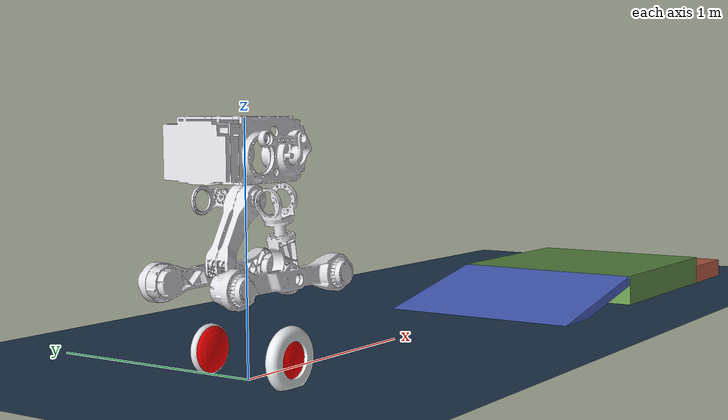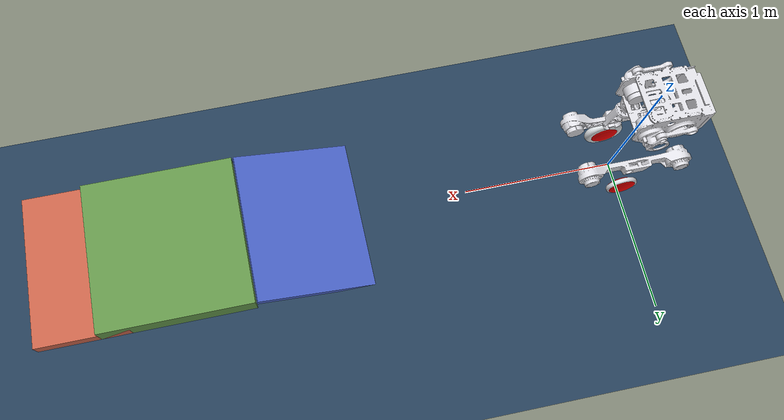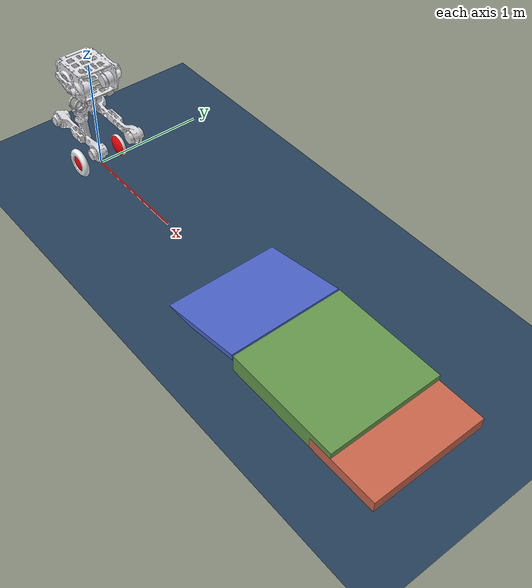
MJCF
<mujoco model="y4aurdf20250827">
  <compiler angle="radian" meshdir="../meshes/" />
  <option timestep="0.002" integrator="RK4">
  </option>
  <default>
    <light castshadow="false" diffuse="1 1 1" />
    <camera fovy="60" />
    <default class="visual">
      <geom contype="0" conaffinity="0" group="1" type="mesh" rgba="0.9 0.9 0.9 1.0" />
    </default>
    <default class="collision">
      <geom contype="1" conaffinity="1" friction="1.0 0.8 0.8" rgba="0.9 0.3 0.4 0" margin="0.001" group="0" />
    </default>
    <joint damping="0.01" armature="0.01" frictionloss="0.5" />
  </default>

  <asset>
    <mesh name="base_link" file="base_link.STL"/>
    <mesh name="left_hip_pitch_link" file="left_hip_pitch_link.STL"/>
    <mesh name="left_hip_roll_link" file="left_hip_roll_link.STL"/>
    <mesh name="left_knee_link" file="left_knee_link.STL"/>
    <mesh name="left_wheel_link" file="left_wheel_link.STL"/>
    <mesh name="right_hip_pitch_link" file="right_hip_pitch_link.STL"/>
    <mesh name="right_hip_roll_link" file="right_hip_roll_link.STL"/>
    <mesh name="right_knee_link" file="right_knee_link.STL"/>
    <mesh name="right_wheel_link" file="right_wheel_link.STL"/>
  </asset>

  <asset>
    <texture name="grid" type="2d" builtin="checker" width="512" height="512" rgb1=".1 .2 .3" rgb2=".2 .3 .4" />
    <material name="grid" texture="grid" texrepeat="1 1" texuniform="true" reflectance=".2" />
  </asset>

  <worldbody>
    <light pos="5 0 30" />
    <geom name="plane" type="plane" size="20 20 .01" material="grid" />

    <geom name="slope1" type="box" size="0.3 0.5 0.07" pos="3.6 0. 0.025" euler="0.0 0 0" rgba="0.8 0.4 0.3 1" contype="1" conaffinity="1" friction="1.5 0.1 0.01" />
    <geom name="slope2" type="box" size="0.5 0.5 0.125" pos="3 0. 0.025" euler="-0.0 0 0" rgba="0.4 0.6 0.3 1" contype="1" conaffinity="1" friction="1.5 0.1 0.01" />
    <geom name="slope3" type="box" size="0.5 0.5 0.025" pos="2 0. 0.025" euler="0 -0.2 0" rgba="0.3 0.4 0.8 1" contype="1" conaffinity="1" friction="1.5 0.1 0.01" />

    <body name="base_link" pos="0 0 0.76">
      <inertial pos="0.0031866 0.0024622 0.077211" quat="0.999295 -0.00334779 -0.0373072 -0.00249045" mass="9.7803" diaginertia="0.184634 0.173796 0.0364601"/>
      <joint name="base_joint" type="free"  limited="false" actuatorfrclimited="false" />
      <geom type="mesh" contype="0" conaffinity="0" group="1" density="0" rgba="0.86667 0.86667 0.8902 1" mesh="base_link"/>
      <geom type="mesh" rgba="0.86667 0.86667 0.8902 1" mesh="base_link"/>
      <site name="site_base" type="sphere" pos="0 0 0" size="0.01" rgba="1 0 0 1"/>
      <body name="left_hip_pitch_link" pos="0.0055 0.05745 -0.069">
        <inertial pos="-0.0054202 0.080914 -0.00093706" quat="0.709092 0.6994 -0.0451738 0.0773804" mass="1.801" diaginertia="0.00402051 0.00309839 0.0028746"/>
        <joint name="left_hip_pitch_joint" pos="0 0 0" axis="0 1 0" range="-2.3562 3.0543" actuatorfrcrange="-90 90"/>
        <geom type="mesh" contype="0" conaffinity="0" group="1" density="0" rgba="0.86667 0.86667 0.8902 1" mesh="left_hip_pitch_link"/>
        <geom type="mesh" rgba="0.86667 0.86667 0.8902 1" mesh="left_hip_pitch_link"/>
        <body name="left_hip_roll_link" pos="0.03048 0.08605 0.0053744" quat="0.996195 0 -0.0871543 0">
          <inertial pos="-0.029905 -0.0004783 -0.20363" quat="0.704662 0.0153821 0.0183055 0.709141" mass="3.1782" diaginertia="0.0462438 0.0449155 0.00541169"/>
          <joint name="left_hip_roll_joint" pos="0 0 0" axis="1 0 0" range="-0.2618 1.7453" actuatorfrcrange="-90 90"/>
          <geom type="mesh" contype="0" conaffinity="0" group="1" density="0" rgba="0.86667 0.86667 0.8902 1" mesh="left_hip_roll_link"/>
          <geom type="mesh" rgba="0.86667 0.86667 0.8902 1" mesh="left_hip_roll_link"/>
          <body name="left_knee_link" pos="-0.03445 0.03495 -0.3" quat="0.996195 0 0.0871543 0">
            <inertial pos="-0.026177 -0.034696 -0.18407" quat="0.73463 0.0482763 0.0889522 0.670877" mass="1.5128" diaginertia="0.025466 0.0252553 0.00196625"/>
            <joint name="left_knee_joint" pos="0 0 0" axis="0 1 0" range="-0.33161 2.1991" actuatorfrcrange="-130 130"/>
            <geom type="mesh" contype="0" conaffinity="0" group="1" density="0" rgba="0.86667 0.86667 0.8902 1" mesh="left_knee_link"/>
            <geom type="mesh" rgba="0.86667 0.86667 0.8902 1" mesh="left_knee_link"/>
            <body name="left_wheel_link" pos="-0.052094 -0.01245 -0.29544">
              <inertial pos="-3.395e-05 0.024484 -1.108e-05" quat="0.691812 -0.146193 -0.146187 0.691848" mass="0.94045" diaginertia="0.0043825 0.00230215 0.00230185"/>
              <joint name="left_wheel_joint" pos="0 0 0" axis="0 1 0"/>
              <geom type="mesh" contype="0" conaffinity="0" group="1" density="0" rgba="0.86667 0.86667 0.8902 1" mesh="left_wheel_link"/>
              <geom type="ellipsoid" pos="0.0 0.025 0.0" euler="1.57 0 0" rgba="1 0 0 1" size="0.1 0.1 0.035 "/>
              <site name="site_left_wheel" type="sphere" pos="0 0 0" size="0.01" rgba="1 0 0 1"/>
            </body>
          </body>
        </body>
      </body>
      <body name="right_hip_pitch_link" pos="0.0055 -0.05745 -0.069">
        <inertial pos="-0.0054598 -0.080931 -0.00096148" quat="0.690889 0.71738 -0.0768857 0.0461247" mass="1.8053" diaginertia="0.00402881 0.00311288 0.00286901"/>
        <joint name="right_hip_pitch_joint" pos="0 0 0" axis="0 1 0" range="-2.3562 3.0543" actuatorfrcrange="-90 90"/>
        <geom type="mesh" contype="0" conaffinity="0" group="1" density="0" rgba="0.86667 0.86667 0.8902 1" mesh="right_hip_pitch_link"/>
        <geom type="mesh" rgba="0.86667 0.86667 0.8902 1" mesh="right_hip_pitch_link"/>
        <body name="right_hip_roll_link" pos="0.03048 -0.08605 0.0053744" quat="0.996195 0 -0.0871543 0">
          <inertial pos="-0.029835 0.00047888 -0.20347" quat="0.707879 0.0180644 0.0152854 0.705937" mass="3.1782" diaginertia="0.0461427 0.0448136 0.00541217"/>
          <joint name="right_hip_roll_joint" pos="0 0 0" axis="1 0 0" range="-1.7453 0.2618" actuatorfrcrange="-90 90"/>
          <geom type="mesh" contype="0" conaffinity="0" group="1" density="0" rgba="0.86667 0.86667 0.8902 1" mesh="right_hip_roll_link"/>
          <geom type="mesh" rgba="0.86667 0.86667 0.8902 1" mesh="right_hip_roll_link"/>
          <body name="right_knee_link" pos="-0.03445 -0.03495 -0.3" quat="0.996195 0 0.0871543 0">
            <inertial pos="-0.026177 0.034694 -0.18407" quat="0.670858 0.0889538 0.0482743 0.734647" mass="1.5128" diaginertia="0.025466 0.0252553 0.00196634"/>
            <joint name="right_knee_joint" pos="0 0 0" axis="0 1 0" range="-0.33161 2.1991" actuatorfrcrange="-130 130"/>
            <geom type="mesh" contype="0" conaffinity="0" group="1" density="0" rgba="0.86667 0.86667 0.8902 1" mesh="right_knee_link"/>
            <geom type="mesh" rgba="0.86667 0.86667 0.8902 1" mesh="right_knee_link"/>
            <body name="right_wheel_link" pos="-0.052094 0.01245 -0.29544">
              <inertial pos="5.78e-06 -0.024484 3.714e-05" quat="0.45822 0.538544 0.538573 0.458196" mass="0.94045" diaginertia="0.0043825 0.00230221 0.00230189"/>
              <joint name="right_wheel_joint" pos="0 0 0" axis="0 1 0"/>
              <geom type="mesh" contype="0" conaffinity="0" group="1" density="0" rgba="0.89804 0.91765 0.92941 1" mesh="right_wheel_link"/>
              <geom type="ellipsoid" pos="0.0 -0.025 0.0" euler="1.57 0 0" rgba="1 0 0 1" size="0.1 0.1 0.035 "/>
            </body>
          </body>
        </body>
      </body>
    </body>
  </worldbody>

  <actuator>
    <motor joint="left_hip_pitch_joint" name="left_hip_pitch_joint" ctrllimited="true" ctrlrange="-90 90" />
    <motor joint="left_hip_roll_joint" name="left_hip_roll_joint" ctrllimited="true" ctrlrange="-90 90" />
    <motor joint="left_knee_joint" name="left_knee_joint" ctrllimited="true" ctrlrange="-130 130" />
    <motor joint="left_wheel_joint" name="left_wheel_joint" ctrllimited="true" ctrlrange="-60 60" />
    <motor joint="right_hip_pitch_joint" name="right_hip_pitch_joint" ctrllimited="true" ctrlrange="-90 90" />
    <motor joint="right_hip_roll_joint" name="right_hip_roll_joint" ctrllimited="true" ctrlrange="-90 90" />
    <motor joint="right_knee_joint" name="right_knee_joint" ctrllimited="true" ctrlrange="-130 130" />
    <motor joint="right_wheel_joint" name="right_wheel_joint" ctrllimited="true" ctrlrange="-60 60" />
  </actuator>

  <contact>
    <exclude body1="base_link" body2="left_hip_pitch_link" />
    <exclude body1="base_link" body2="left_hip_roll_link" />
    <exclude body1="left_hip_pitch_link" body2="left_hip_roll_link" />
    <exclude body1="left_hip_roll_link" body2="left_knee_link" />
    <exclude body1="left_knee_link" body2="left_wheel_link" />

    <exclude body1="base_link" body2="right_hip_pitch_link" />
    <exclude body1="base_link" body2="right_hip_roll_link" />
    <exclude body1="right_hip_pitch_link" body2="right_hip_roll_link" />
    <exclude body1="right_hip_roll_link" body2="right_knee_link" />
    <exclude body1="right_knee_link" body2="right_wheel_link" />
  </contact>

  <sensor>
    <accelerometer name="imu_acc" site="site_base"/>
    <gyro name="imu_omega_b" site="site_base"/>
    <framelinvel name="base_vel" objtype="site" objname="site_base"/>
    <framelinacc name="base_linear_acc" objtype="site" objname="site_base"/>

    <framelinvel name="left_wheel_vel" objtype="site" objname="site_left_wheel"/>
  </sensor>

  <keyframe>
    <key time="0" qpos="0 0 0.728
	    1 0 0 0
	    -0.2618 0 0.397 0
	    -0.2618 0 0.397 0" />
  </keyframe>
</mujoco>
